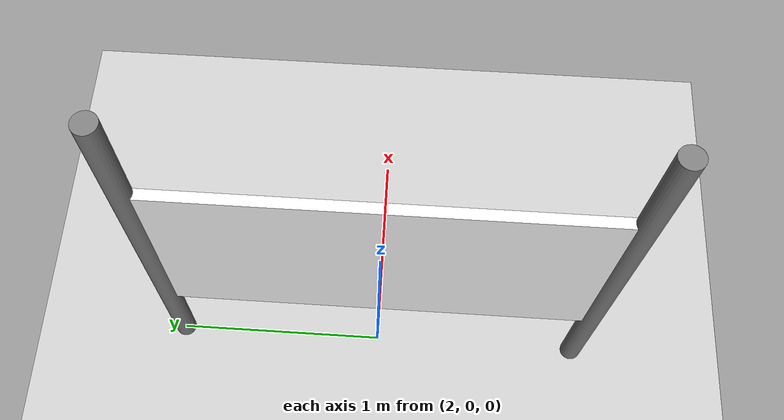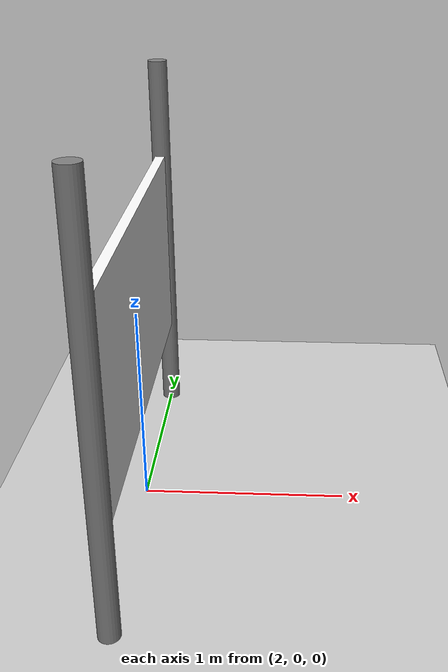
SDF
<?xml version="1.0"?>
<sdf version="1.6">
  <world name="whiteboard_world">
    <include>
      <uri>model://sun</uri>
    </include>
    <include>
      <uri>model://ground_plane</uri>
    </include>

    <model name = "whiteboard">
      <static>true</static>
      <pose>2 0 0 0 0 1.5708</pose>

      <!-- Vertical Poles -->
      <link name="stand_pole_left">
        <pose>-1 0 1 0 0 0</pose>
        <visual name="stand_pole_left_visual">
          <geometry>
            <cylinder>
              <radius>0.05</radius>
              <length>2</length>
            </cylinder>
          </geometry>
          <material>
            <ambient>0.5 0.5 0.5 1</ambient>
          </material>
        </visual>
      </link>

      <link name="stand_pole_right">
        <pose>1 0 1 0 0 0</pose>
        <visual name="stand_pole_right_visual">
          <geometry>
            <cylinder>
              <radius>0.05</radius>
              <length>2</length>
            </cylinder>
          </geometry>
          <material>
            <ambient>0.5 0.5 0.5 1</ambient>
          </material>
        </visual>
      </link>

      <link name="whiteboard_link">
        <!-- Positioned at the right height with rotation -->
        <pose>0 0 1 -1.5708 0 0</pose>
        <visual name="whiteboard_visual">
          <geometry>
            <box>
              <size>2 1 0.05</size>
            </box>
          </geometry>
          <material>
            <ambient>1 1 1 1</ambient>
          </material>
        </visual>
        <collision name="whiteboard_collision">
          <geometry>
            <box>
              <size>2 1 0.05</size>
            </box>
          </geometry>
        </collision>
      </link>
    </model>
  </world>
</sdf>
